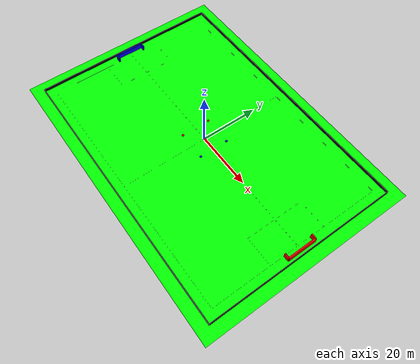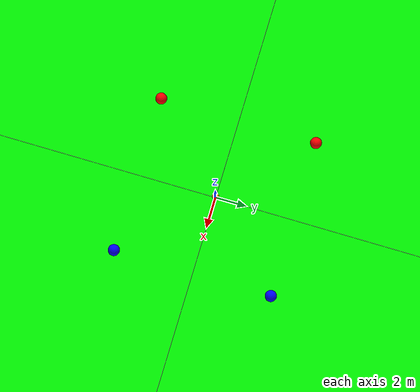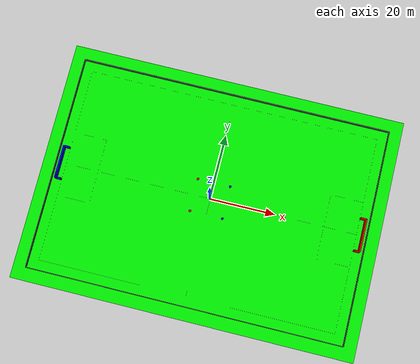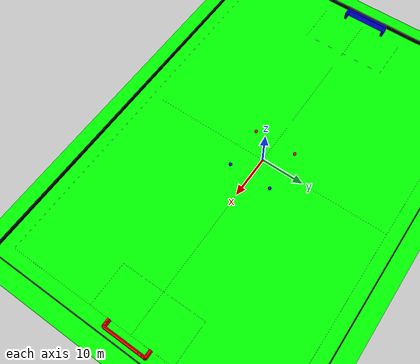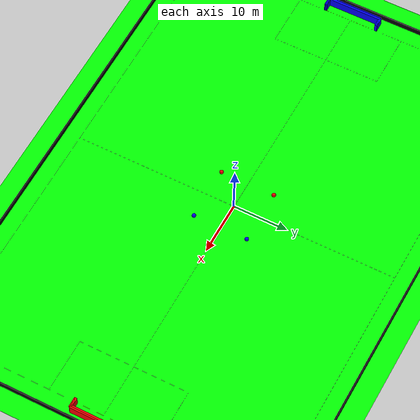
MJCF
<?xml version="1.0" encoding="UTF-8"?>
<mujoco>
   <default>
      <geom contype="1" conaffinity="1" condim="3" friction=".5 .02 .02" />
   </default>
   <worldbody>
      <!--Stadium-->
      <geom name="stadium" type="plane" size="52 37 0.1" pos="0 0 0" rgba="0 1 0 1" />
      <!--Boundaries-->
      <body name="boundaries">
         <geom name="boundary_1" type="box" size="48 0.1 1" pos="0 33 0" rgba="0 0 0 1" mass="1000" />
         <geom name="boundary_2" type="box" size="48 0.1 1" pos="0 -33 0" rgba="0 0 0 1" mass="1000" />
         <geom name="boundary_3" type="box" size="33 0.1 1" pos="48 0 0" rgba="0 0 0 1" euler="0 0 90" mass="1000" />
         <geom name="boundary_4" type="box" size="33 0.1 1" pos="-48 0 0" rgba="0 0 0 1" euler="0 0 90" mass="1000" />
      </body>
      <!--Goal posts-->
      <!--Goal post 1-->
      <body name="Goal_post_1">
         <geom type="box" size="5 0.2 1.6" pos="46.8 0 0" rgba="1 0 0 1" euler="0 0 90" />
         <geom type="box" size="0.9 0.2 1.6" pos="45.9 5 0" rgba="1 0 0 1" />
         <geom type="box" size="0.9 0.2 1.6" pos="45.9 -5 0" rgba="1 0 0 1" />
         <site name="gp_11" type="box" size="5 0.2 1.6" pos="46.6 0 0" rgba="1 0 0 1" euler="0 0 90" />
         <site name="gp_12" type="box" size="0.9 0.2 1.6" pos="45.9 4.9 0" rgba="1 0 0 1" />
         <site name="gp_13" type="box" size="0.9 0.2 1.6" pos="45.9 -4.9 0" rgba="1 0 0 1" />
      </body>
      <!--Goal post 2-->
      <body name="Goal_post_2">
         <geom type="box" size="5 0.2 1.6" pos="-46.8 0 0" rgba="0 0 1 1" euler="0 0 90" />
         <geom type="box" size="0.9 0.2 1.6" pos="-45.9 5 0" rgba="0 0 1 1" />
         <geom type="box" size="0.9 0.2 1.6" pos="-45.9 -5 0" rgba="0 0 1 1" />
         <site name="gp_21" type="box" size="5 0.2 1.6" pos="-46.6 0 0" rgba="0 0 1 1" euler="0 0 90" />
         <site name="gp_22" type="box" size="0.9 0.2 1.6" pos="-45.9 4.9 0" rgba="0 0 1 1" />
         <site name="gp_23" type="box" size="0.9 0.2 1.6" pos="-45.9 -4.9 0" rgba="0 0 1 1" />
      </body>
      <!-- Field Markings -->
      <!-- Field Lines -->
      <body>
         <!-- Touch lines -->
         <geom name="touch_line_outside_1" type="box" size="0.001 45 0.01" pos="0 30 0" rgba="255 255 255 1" euler="90 0 90" />
         <geom name="touch_line_outside_2" type="box" size="0.001 45 0.01" pos="0 -30 0" rgba="255 255 255 1" euler="90 0 90" />
         <geom name="touch_line_goal_A_right" type="box" size="0.001 12 0.01" pos="-45 -18 0" rgba="255 255 255 1" euler="0 90 0" />
         <geom name="touch_line_goal_A_left" type="box" size="0.001 12 0.01" pos="-45 18 0" rgba="255 255 255 1" euler="0 90 0" />
         <geom name="touch_line_goal_B_right" type="box" size="0.001 12 0.01" pos="45 -18 0" rgba="255 255 255 1" euler="0 90 0" />
         <geom name="touch_line_goal_B_left" type="box" size="0.001 12 0.01" pos="45 18 0" rgba="255 255 255 1" euler="0 90 0" />
         <!-- Goal lines -->
         <geom name="touch_line_goal_A" type="box" size="0.001 5 0.01" pos="-45 0 0" rgba="255 255 0 1" euler="0 90 0" />
         <geom name="touch_line_goal_B" type="box" size="0.001 5 0.01" pos="45 0 0" rgba="255 255 0 1" euler="0 90 0" />
      </body>
      <!-- Halfway Lines -->
      <body>
         <!-- Halfway Line -->
         <geom name="marking_line_halfway" type="box" size="0.001 30 0.01" pos="0 0 0" rgba="255 255 255 1" euler="0 90 0" />
         <!-- Goal-to-Goal Line -->
         <geom name="marking_line_goal_to_goal" type="box" size="0.001 45 0.01" pos="0 0 0" rgba="255 255 255 1" euler="90 0 90" />
      </body>
      <!-- Defence area -->
      <body>
         <geom name="Defence area1" type="box" size="0.001 5 0.01" pos="40 10 0" rgba="255 255 255 1" euler="90 0 90" />
         <geom name="Defence area2" type="box" size="0.001 5 0.01" pos="40 -10 0" rgba="255 255 255 1" euler="90 0 90" />
         <geom name="Defence area3" type="box" size="0.001 10 0.01" pos="35 0 0" rgba="255 255 255 1" euler="0 90 0" />
      </body>
      <body>
         <geom name="Defence area4" type="box" size="0.001 5 0.01" pos="-40 10 0" rgba="255 255 255 1" euler="90 0 90" />
         <geom name="Defence area5" type="box" size="0.001 5 0.01" pos="-40 -10 0" rgba="255 255 255 1" euler="90 0 90" />
         <geom name="Defence area6" type="box" size="0.001 10 0.01" pos="-35 0 0" rgba="255 255 255 1" euler="0 90 0" />
      </body>
      <!-- Ball -->
      <body name="ball" pos="0 0 0.365">
         <geom name="ball" type="sphere" size="0.215" rgba="1 0.647 0 1" mass="2.77" friction="1" />
         <joint name="ball" type="free" />
      </body>
      <!-- Team A -->
      <!-- Team A Player 1 -->
      <body name="A_1" pos="5 5 0.365">
         <geom name="A_1" type="sphere" size="0.365" rgba="0 0 1 1" mass="200" density="100" />
         <joint name="A_1" type="free" />
      </body>
      <!-- Team A Player 2 -->
      <body name="A_2" pos="5 -5 0.365">
         <geom name="A_2" type="sphere" size="0.365" rgba="0 0 1 1" mass="200" density="100" />
         <joint name="A_2" type="free" />
      </body>
      <!-- Team A Player 3 -->
      <body name="A_3" pos="5 -5 0.365">
         <geom name="A_3" type="sphere" size="0.365" rgba="0 0 1 1" mass="200" density="100" />
         <joint name="A_3" type="free" />
      </body>
      <!-- Team A Player 4 -->
      <body name="A_4" pos="5 -5 0.365">
         <geom name="A_4" type="sphere" size="0.365" rgba="0 0 1 1" mass="200" density="100" />
         <joint name="A_4" type="free" />
      </body>
      <!-- Team A Player 5 -->
      <body name="A_5" pos="5 -5 0.365">
         <geom name="A_5" type="sphere" size="0.365" rgba="0 0 1 1" mass="200" density="100" />
         <joint name="A_5" type="free" />
      </body>
      <!-- Team A Player 6 -->
      <body name="A_6" pos="5 -5 0.365">
         <geom name="A_6" type="sphere" size="0.365" rgba="0 0 1 1" mass="200" density="100" />
         <joint name="A_6" type="free" />
      </body>
      <!-- Team B -->
      <!-- Team B Player 1 -->
      <body name="B_1" pos="-5 5 0.365">
         <geom name="B_1" type="sphere" size="0.365" rgba="1 0 0 1" mass="200" density="100" />
         <joint name="B_1" type="free" />
      </body>
      <!-- Team B Player 2 -->
      <body name="B_2" pos="-5 -5 0.365">
         <geom name="B_2" type="sphere" size="0.365" rgba="1 0 0 1" mass="200" density="100" />
         <joint name="B_2" type="free" />
      </body>
      <!-- Team B Player 3 -->
      <body name="B_3" pos="-5 -5 0.365">
         <geom name="B_3" type="sphere" size="0.365" rgba="1 0 0 1" mass="200" density="100" />
         <joint name="B_3" type="free" />
      </body>
      <!-- Team B Player 4 -->
      <body name="B_4" pos="-5 -5 0.365">
         <geom name="B_4" type="sphere" size="0.365" rgba="1 0 0 1" mass="200" density="100" />
         <joint name="B_4" type="free" />
      </body>
      <!-- Team B Player 5 -->
      <body name="B_5" pos="-5 -5 0.365">
         <geom name="B_5" type="sphere" size="0.365" rgba="1 0 0 1" mass="200" density="100" />
         <joint name="B_5" type="free" />
      </body>
      <!-- Team B Player 6 -->
      <body name="B_6" pos="-5 -5 0.365">
         <geom name="B_6" type="sphere" size="0.365" rgba="1 0 0 1" mass="200" density="100" />
         <joint name="B_6" type="free" />
      </body>
   </worldbody>
</mujoco>
